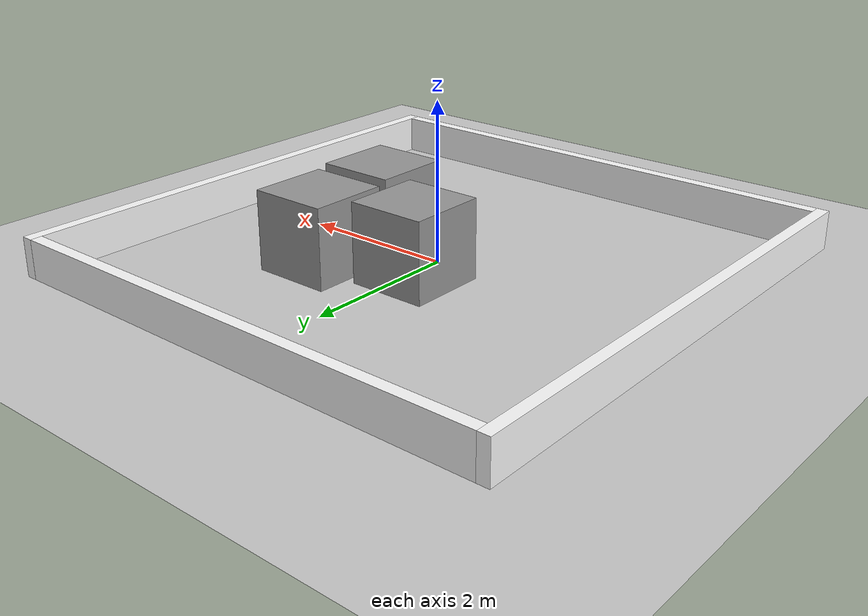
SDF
<sdf version="1.6">
 <world name="default">
  <light name="sun" type="directional">
   <pose>0 0 10 0 -0 0</pose>
   <diffuse>0.8 0.8 0.8 1</diffuse>
   <specular>0.2 0.2 0.2 1</specular>
   <attenuation>
    <range>1000</range>
    <constant>0.9</constant>
    <linear>0.01</linear>
    <quadratic>0.001</quadratic>
   </attenuation>
   <direction>-0.5 0.1 -0.9</direction>
  </light>
  <model name="ground_plane">
   <static>1</static>
   <link name="link">
    <collision name="collision">
     <geometry><plane><normal>0 0 1</normal><size>100 100</size></plane></geometry>
     <surface>
      <contact><collide_bitmask>65535</collide_bitmask></contact>
      <friction><ode><mu>100</mu><mu2>50</mu2></ode></friction>
     </surface>
    </collision>
    <visual name="visual">
     <cast_shadows>0</cast_shadows>
     <geometry><plane><normal>0 0 1</normal><size>100 100</size></plane></geometry>
     <material>
      <script><uri>file://media/materials/scripts/gazebo.material</uri><name>Gazebo/Grey</name></script>
     </material>
    </visual>
   </link>
  </model>
  <physics name="default_physics" default="0" type="ode">
   <real_time_update_rate>100</real_time_update_rate>
   <max_step_size>0.01</max_step_size>
   <real_time_factor>0.5</real_time_factor>
   <ode>
    <solver>
     <type>quick</type>
     <iters>150</iters>
     <precon_iters>0</precon_iters>
     <sor>1.4</sor>
     <use_dynamic_moi_rescaling>1</use_dynamic_moi_rescaling>
    </solver>
    <constraints>
     <cfm>1e-05</cfm>
     <erp>0.2</erp>
     <contact_max_correcting_vel>2000</contact_max_correcting_vel>
     <contact_surface_layer>0.01</contact_surface_layer>
    </constraints>
   </ode>
  </physics>
  <model name="simple">
   <link name="fixed"/>
   <link name="Wall_0">
    <collision name="Wall_0_Collision">
     <geometry><box><size>6.5 0.15 0.5</size></box></geometry>
     <pose>0 1.25 0.25 0 -0 0</pose>
    </collision>
    <visual name="Wall_0_Visual">
     <pose>0 1.25 0.25 0 -0 0</pose>
     <geometry><box><size>6.5 0.15 0.5</size></box></geometry>
     <material><ambient>1 1 1 1</ambient></material>
    </visual>
    <pose>0 2.075 0 0 -0 0</pose>
   </link>
   <link name="Wall_2">
    <collision name="Wall_2_Collision">
     <geometry><box><size>6.8 0.15 0.5</size></box></geometry>
     <pose>0 0 0.25 0 -0 0</pose>
    </collision>
    <visual name="Wall_2_Visual">
     <pose>0 -1.25 0.25 0 -0 0</pose>
     <geometry><box><size>6.8 0.15 0.5</size></box></geometry>
     <material><ambient>1 1 1 1</ambient></material>
    </visual>
    <pose>-2.075 0 0 0 0 -1.5708</pose>
   </link>
   <link name="Wall_3">
    <collision name="Wall_3_Collision">
     <geometry><box><size>6.5 0.15 0.5</size></box></geometry>
     <pose>0 -1.25 0.25 0 -0 0</pose>
    </collision>
    <visual name="Wall_3_Visual">
     <pose>0 -1.25 0.25 0 -0 0</pose>
     <geometry><box><size>6.5 0.15 0.5</size></box></geometry>
     <material><ambient>1 1 1 1</ambient></material>
    </visual>
    <pose>0 -2.075 0 0 -0 0</pose>
   </link>
   <link name="Wall_4">
    <collision name="Wall_4_Collision">
     <geometry><box><size>6.8 0.15 0.5</size></box></geometry>
     <pose>0 -1.25 0.25 0 -0 0</pose>
    </collision>
    <visual name="Wall_4_Visual">
     <pose>0 -1.25 0.25 0 -0 0</pose>
     <geometry><box><size>6.8 0.15 0.5</size></box></geometry>
     <material><ambient>1 1 1 1</ambient></material>
    </visual>
    <pose>2.075 0 0 0 -0 1.5708</pose>
   </link>
   <static>1</static>
  </model>
  <scene><ambient>0.4 0.4 0.4 1</ambient><background>0.7 0.7 0.7 1</background><shadows>0</shadows></scene>
  <gravity>0 0 -9.8</gravity>
  <magnetic_field>6e-06 2.3e-05 -4.2e-05</magnetic_field>
  <atmosphere type="adiabatic"/>
  <audio><device>default</device></audio>
  <spherical_coordinates>
   <surface_model>EARTH_WGS84</surface_model>
   <latitude_deg>0</latitude_deg>
   <longitude_deg>0</longitude_deg>
   <elevation>0</elevation>
   <heading_deg>0</heading_deg>
  </spherical_coordinates>
  <model name="unit_box">
   <pose>0.964344 1.01088 0.5 0 -0 0</pose>
   <link name="link">
    <inertial>
     <mass>1</mass>
     <inertia>
      <ixx>0.166667</ixx>
      <ixy>0</ixy>
      <ixz>0</ixz>
      <iyy>0.166667</iyy>
      <iyz>0</iyz>
      <izz>0.166667</izz>
     </inertia>
    </inertial>
    <collision name="collision"><geometry><box><size>1 1 1</size></box></geometry></collision>
    <visual name="visual">
     <geometry><box><size>1 1 1</size></box></geometry>
     <material>
      <script><name>Gazebo/Grey</name><uri>file://media/materials/scripts/gazebo.material</uri></script>
     </material>
    </visual>
   </link>
  </model>
  <model name="unit_box_0">
   <pose>-0.153392 0.599954 0.5 0 -0 0</pose>
   <link name="link">
    <inertial>
     <mass>1</mass>
     <inertia>
      <ixx>0.166667</ixx>
      <ixy>0</ixy>
      <ixz>0</ixz>
      <iyy>0.166667</iyy>
      <iyz>0</iyz>
      <izz>0.166667</izz>
     </inertia>
    </inertial>
    <collision name="collision"><geometry><box><size>1 1 1</size></box></geometry></collision>
    <visual name="visual">
     <geometry><box><size>1 1 1</size></box></geometry>
     <material>
      <script><name>Gazebo/Grey</name><uri>file://media/materials/scripts/gazebo.material</uri></script>
     </material>
    </visual>
   </link>
  </model>
  <model name="unit_box_1">
   <pose>1.06296 -0.205463 0.5 0 -0 0</pose>
   <link name="link">
    <inertial>
     <mass>1</mass>
     <inertia>
      <ixx>0.166667</ixx>
      <ixy>0</ixy>
      <ixz>0</ixz>
      <iyy>0.166667</iyy>
      <iyz>0</iyz>
      <izz>0.166667</izz>
     </inertia>
    </inertial>
    <collision name="collision"><geometry><box><size>1 1 1</size></box></geometry></collision>
    <visual name="visual">
     <geometry><box><size>1 1 1</size></box></geometry>
     <material>
      <script><name>Gazebo/Grey</name><uri>file://media/materials/scripts/gazebo.material</uri></script>
     </material>
    </visual>
   </link>
  </model>
 </world>
</sdf>
